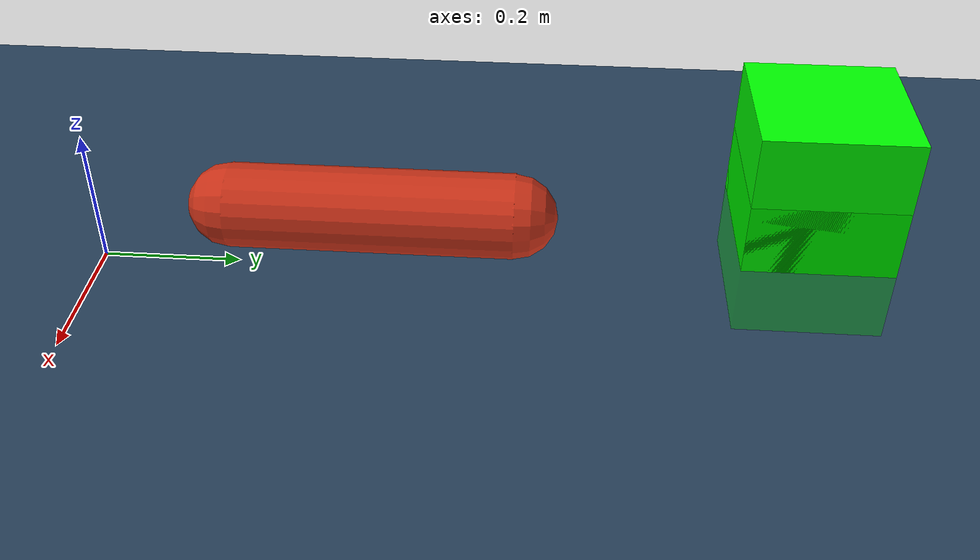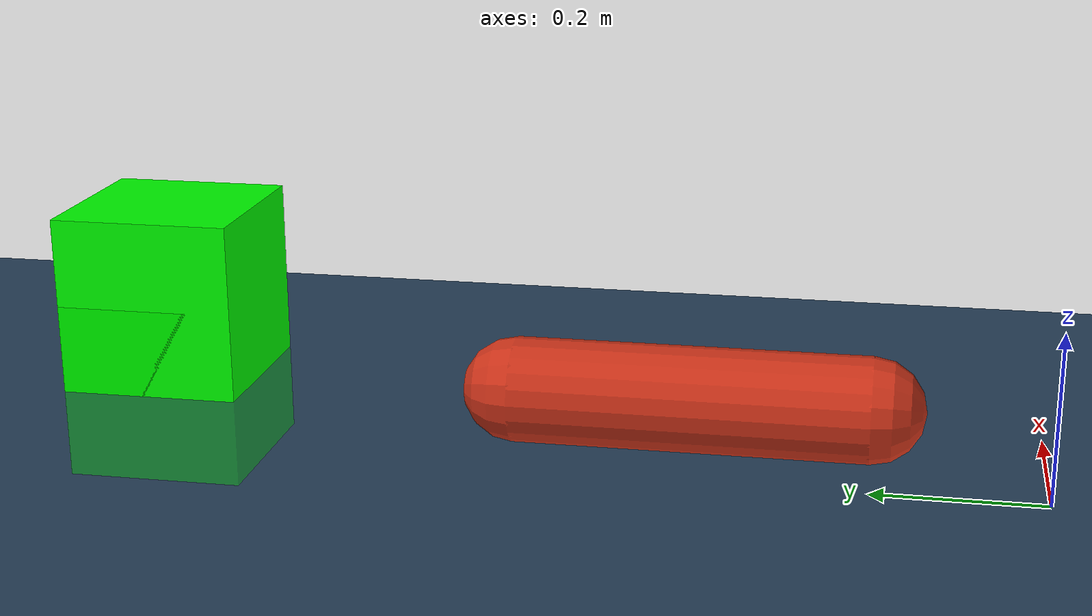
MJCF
<mujoco model="piston_block">

    <asset>
        <!-- Define materials -->
        <material name="block_mat" rgba="0.2 0.2 0.8 0.5"/>
        <material name="rod_color" rgba="0.8 0.2 0.1 1"/>
        <material name="goal_green" rgba="0 1 0 1"/>
        <texture name="grid" type="2d" builtin="checker" rgb1=".1 .2 .3" rgb2=".2 .3 .4" width="300" height="300" mark="edge" markrgb=".2 .3 .4"/>
        <material name="grid" texture="grid" texrepeat="1 1" texuniform="true" reflectance=".2"/>

    </asset>

    <worldbody>
        <light name="light" pos="0 0 6"/>
        <geom name="floor" size="3 3 .2" type="plane" material="grid" conaffinity="7"/>

        <body name = "piston_rod" pos = "0 0.2 0.1">
            <joint name="rod" type="slide" axis="0 1 0" limited="true" range="-2 5"/>
            <geom name = "rod" type = "capsule"  size="0.06" mass = "1" fromto="0 0 0  0 0.4 0" material="rod_color" solimp = "0 0.4 0.001 0.5 0.2" solref = "0.04 1.0"/>
        </body>

        <body name="goal" pos = "0 1.0 0.2">
            <geom type = "box" size="0.1 0.1 0.1" mass="0.5" material="goal_green" solimp = "0 0.4 0.001 0.5 0.2" solref = "0.04 1.0" condim="1" margin = "0.001" contype = "3" conaffinity = "3"/>
            <joint type="free" />
        </body>

        <body pos="0 1.0 0" name="display_goal">
            <joint type="free" />
            <geom type = "box" pos = "0 0 0" size = ".1 .1 .1" rgba = "0 0 0 0" mass="1" margin = "0.001" contype = "4" conaffinity = "4" />
            <site type="box" pos="0 0 0.1" size="0.1 0.1 0.1" rgba="0 1 0 0.4"/>
        </body>

    </worldbody>

    <actuator>
        <!-- Actuator to control piston movement -->
        <motor name="piston_motor" joint="rod" ctrllimited="true" ctrlrange="-1 1" gear = "20"/>
    </actuator>
</mujoco>
